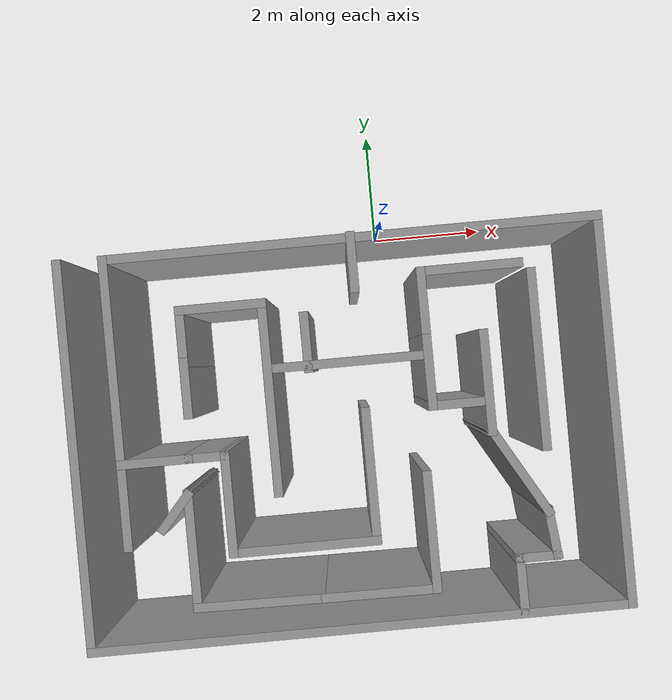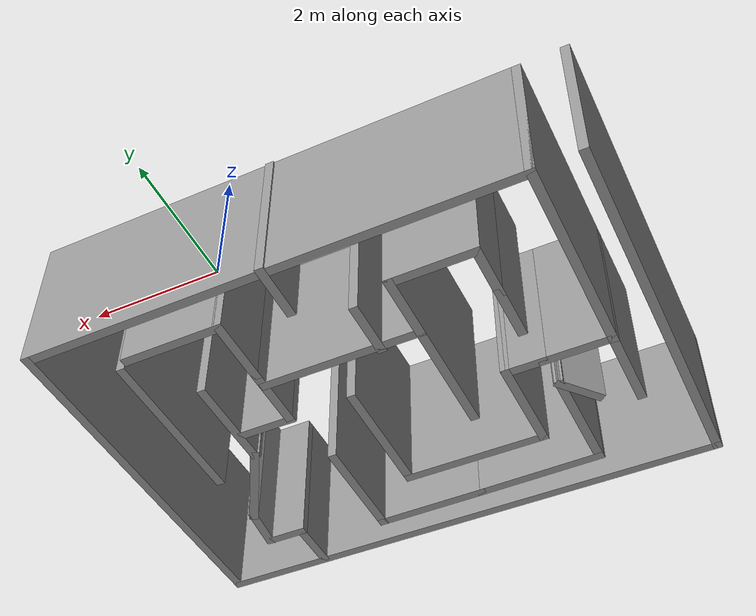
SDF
<?xml version='1.0'?>
<sdf version='1.6'>
  <model name='mymap1'>
    <pose frame=''>-0.925 -3.46046 0 0 -0 0</pose>
    <link name='Wall_0'>
      <collision name='Wall_0_Collision'>
        <geometry>
          <box>
            <size>1 0.15 2.5</size>
          </box>
        </geometry>
        <pose frame=''>0 0 1.25 0 -0 0</pose>
      </collision>
      <visual name='Wall_0_Visual'>
        <pose frame=''>0 0 1.25 0 -0 0</pose>
        <geometry>
          <box>
            <size>1 0.15 2.5</size>
          </box>
        </geometry>
        <material>
          <script>
            <uri>file://media/materials/scripts/gazebo.material</uri>
            <name>Gazebo/Grey</name>
          </script>
          <ambient>1 1 1 1</ambient>
        </material>
      </visual>
      <pose frame=''>-2.505 0.955457 0 0 -0 1.5708</pose>
    </link>
    <link name='Wall_10'>
      <collision name='Wall_10_Collision'>
        <geometry>
          <box>
            <size>1.5 0.15 2.5</size>
          </box>
        </geometry>
        <pose frame=''>0 0 1.25 0 -0 0</pose>
      </collision>
      <visual name='Wall_10_Visual'>
        <pose frame=''>0 0 1.25 0 -0 0</pose>
        <geometry>
          <box>
            <size>1.5 0.15 2.5</size>
          </box>
        </geometry>
        <material>
          <script>
            <uri>file://media/materials/scripts/gazebo.material</uri>
            <name>Gazebo/Grey</name>
          </script>
          <ambient>1 1 1 1</ambient>
        </material>
      </visual>
      <pose frame=''>-1.83 2.23046 0 0 -0 0</pose>
    </link>
    <link name='Wall_11'>
      <collision name='Wall_11_Collision'>
        <geometry>
          <box>
            <size>3.25 0.15 2.5</size>
          </box>
        </geometry>
        <pose frame=''>0 0 1.25 0 -0 0</pose>
      </collision>
      <visual name='Wall_11_Visual'>
        <pose frame=''>0 0 1.25 0 -0 0</pose>
        <geometry>
          <box>
            <size>3.25 0.15 2.5</size>
          </box>
        </geometry>
        <material>
          <script>
            <uri>file://media/materials/scripts/gazebo.material</uri>
            <name>Gazebo/Grey</name>
          </script>
          <ambient>1 1 1 1</ambient>
        </material>
      </visual>
      <pose frame=''>-1.155 0.680457 0 0 0 -1.5708</pose>
    </link>
    <link name='Wall_13'>
      <collision name='Wall_13_Collision'>
        <geometry>
          <box>
            <size>0.75 0.15 2.5</size>
          </box>
        </geometry>
        <pose frame=''>0 0 1.25 0 -0 0</pose>
      </collision>
      <visual name='Wall_13_Visual'>
        <pose frame=''>0 0 1.25 0 -0 0</pose>
        <geometry>
          <box>
            <size>0.75 0.15 2.5</size>
          </box>
        </geometry>
        <material>
          <script>
            <uri>file://media/materials/scripts/gazebo.material</uri>
            <name>Gazebo/Grey</name>
          </script>
          <ambient>1 1 1 1</ambient>
        </material>
      </visual>
      <pose frame=''>-2.275 -0.189543 0 0 -0 0</pose>
    </link>
    <link name='Wall_14'>
      <collision name='Wall_14_Collision'>
        <geometry>
          <box>
            <size>1.75 0.15 2.5</size>
          </box>
        </geometry>
        <pose frame=''>0 0 1.25 0 -0 0</pose>
      </collision>
      <visual name='Wall_14_Visual'>
        <pose frame=''>0 0 1.25 0 -0 0</pose>
        <geometry>
          <box>
            <size>1.75 0.15 2.5</size>
          </box>
        </geometry>
        <material>
          <script>
            <uri>file://media/materials/scripts/gazebo.material</uri>
            <name>Gazebo/Grey</name>
          </script>
          <ambient>1 1 1 1</ambient>
        </material>
      </visual>
      <pose frame=''>-1.975 -0.989543 0 0 0 -1.5708</pose>
    </link>
    <link name='Wall_15'>
      <collision name='Wall_15_Collision'>
        <geometry>
          <box>
            <size>2.5 0.15 2.5</size>
          </box>
        </geometry>
        <pose frame=''>0 0 1.25 0 -0 0</pose>
      </collision>
      <visual name='Wall_15_Visual'>
        <pose frame=''>0 0 1.25 0 -0 0</pose>
        <geometry>
          <box>
            <size>2.5 0.15 2.5</size>
          </box>
        </geometry>
        <material>
          <script>
            <uri>file://media/materials/scripts/gazebo.material</uri>
            <name>Gazebo/Grey</name>
          </script>
          <ambient>1 1 1 1</ambient>
        </material>
      </visual>
      <pose frame=''>-0.8 -1.78954 0 0 -0 0</pose>
    </link>
    <link name='Wall_16'>
      <collision name='Wall_16_Collision'>
        <geometry>
          <box>
            <size>2.25 0.15 2.5</size>
          </box>
        </geometry>
        <pose frame=''>0 0 1.25 0 -0 0</pose>
      </collision>
      <visual name='Wall_16_Visual'>
        <pose frame=''>0 0 1.25 0 -0 0</pose>
        <geometry>
          <box>
            <size>2.25 0.15 2.5</size>
          </box>
        </geometry>
        <material>
          <script>
            <uri>file://media/materials/scripts/gazebo.material</uri>
            <name>Gazebo/Grey</name>
          </script>
          <ambient>1 1 1 1</ambient>
        </material>
      </visual>
      <pose frame=''>0.375 -0.739543 0 0 -0 1.5708</pose>
    </link>
    <link name='Wall_2'>
      <collision name='Wall_2_Collision'>
        <geometry>
          <box>
            <size>1.25 0.15 2.5</size>
          </box>
        </geometry>
        <pose frame=''>0 0 1.25 0 -0 0</pose>
      </collision>
      <visual name='Wall_2_Visual'>
        <pose frame=''>0 0 1.25 0 -0 0</pose>
        <geometry>
          <box>
            <size>1.25 0.15 2.5</size>
          </box>
        </geometry>
        <material>
          <script>
            <uri>file://media/materials/scripts/gazebo.material</uri>
            <name>Gazebo/Grey</name>
          </script>
          <ambient>1 1 1 1</ambient>
        </material>
      </visual>
      <pose frame=''>-3.125 -0.189543 0 0 -0 3.14159</pose>
    </link>
    <link name='Wall_21'>
      <collision name='Wall_21_Collision'>
        <geometry>
          <box>
            <size>1 0.15 2.5</size>
          </box>
        </geometry>
        <pose frame=''>0 0 1.25 0 -0 0</pose>
      </collision>
      <visual name='Wall_21_Visual'>
        <pose frame=''>0 0 1.25 0 -0 0</pose>
        <geometry>
          <box>
            <size>1 0.15 2.5</size>
          </box>
        </geometry>
        <material>
          <script>
            <uri>file://media/materials/scripts/gazebo.material</uri>
            <name>Gazebo/Grey</name>
          </script>
          <ambient>1 1 1 1</ambient>
        </material>
      </visual>
      <pose frame=''>0.381869 2.76454 0 0 0 -1.5708</pose>
    </link>
    <link name='Wall_24'>
      <collision name='Wall_24_Collision'>
        <geometry>
          <box>
            <size>1.25 0.15 2.5</size>
          </box>
        </geometry>
        <pose frame=''>0 0 1.25 0 -0 0</pose>
      </collision>
      <visual name='Wall_24_Visual'>
        <pose frame=''>0 0 1.25 0 -0 0</pose>
        <geometry>
          <box>
            <size>1.25 0.15 2.5</size>
          </box>
        </geometry>
        <material>
          <script>
            <uri>file://media/materials/scripts/gazebo.material</uri>
            <name>Gazebo/Grey</name>
          </script>
          <ambient>1 1 1 1</ambient>
        </material>
      </visual>
      <pose frame=''>1.475 0.860457 0 0 -0 1.5708</pose>
    </link>
    <link name='Wall_27'>
      <collision name='Wall_27_Collision'>
        <geometry>
          <box>
            <size>3 0.15 2.5</size>
          </box>
        </geometry>
        <pose frame=''>0 0 1.25 0 -0 0</pose>
      </collision>
      <visual name='Wall_27_Visual'>
        <pose frame=''>0 0 1.25 0 -0 0</pose>
        <geometry>
          <box>
            <size>3 0.15 2.5</size>
          </box>
        </geometry>
        <material>
          <script>
            <uri>file://media/materials/scripts/gazebo.material</uri>
            <name>Gazebo/Grey</name>
          </script>
          <ambient>1 1 1 1</ambient>
        </material>
      </visual>
      <pose frame=''>3.26606 0.912853 0 0 0 -1.5708</pose>
    </link>
    <link name='Wall_29'>
      <collision name='Wall_29_Collision'>
        <geometry>
          <box>
            <size>1.75 0.15 2.5</size>
          </box>
        </geometry>
        <pose frame=''>0 0 1.25 0 -0 0</pose>
      </collision>
      <visual name='Wall_29_Visual'>
        <pose frame=''>0 0 1.25 0 -0 0</pose>
        <geometry>
          <box>
            <size>1.75 0.15 2.5</size>
          </box>
        </geometry>
        <material>
          <script>
            <uri>file://media/materials/scripts/gazebo.material</uri>
            <name>Gazebo/Grey</name>
          </script>
          <ambient>1 1 1 1</ambient>
        </material>
      </visual>
      <pose frame=''>2.40463 0.61012 0 0 0 -1.5708</pose>
    </link>
    <link name='Wall_3'>
      <collision name='Wall_3_Collision'>
        <geometry>
          <box>
            <size>3.5 0.15 2.5</size>
          </box>
        </geometry>
        <pose frame=''>0 0 1.25 0 -0 0</pose>
      </collision>
      <visual name='Wall_3_Visual'>
        <pose frame=''>0 0 1.25 0 -0 0</pose>
        <geometry>
          <box>
            <size>3.5 0.15 2.5</size>
          </box>
        </geometry>
        <material>
          <script>
            <uri>file://media/materials/scripts/gazebo.material</uri>
            <name>Gazebo/Grey</name>
          </script>
          <ambient>1 1 1 1</ambient>
        </material>
      </visual>
      <pose frame=''>-3.675 1.48546 0 0 -0 1.5708</pose>
    </link>
    <link name='Wall_30'>
      <collision name='Wall_30_Collision'>
        <geometry>
          <box>
            <size>1.75 0.15 2.5</size>
          </box>
        </geometry>
        <pose frame=''>0 0 1.25 0 -0 0</pose>
      </collision>
      <visual name='Wall_30_Visual'>
        <pose frame=''>0 0 1.25 0 -0 0</pose>
        <geometry>
          <box>
            <size>1.75 0.15 2.5</size>
          </box>
        </geometry>
        <material>
          <script>
            <uri>file://media/materials/scripts/gazebo.material</uri>
            <name>Gazebo/Grey</name>
          </script>
          <ambient>1 1 1 1</ambient>
        </material>
      </visual>
      <pose frame=''>2.80463 -0.882701 0 0 0 -1.0472</pose>
    </link>
    <link name='Wall_31'>
      <collision name='Wall_31_Collision'>
        <geometry>
          <box>
            <size>0.868872 0.15 2.5</size>
          </box>
        </geometry>
        <pose frame=''>0 0 1.25 0 -0 0</pose>
      </collision>
      <visual name='Wall_31_Visual'>
        <pose frame=''>0 0 1.25 0 -0 0</pose>
        <geometry>
          <box>
            <size>0.868872 0.15 2.5</size>
          </box>
        </geometry>
        <material>
          <script>
            <uri>file://media/materials/scripts/gazebo.material</uri>
            <name>Gazebo/Grey</name>
          </script>
          <ambient>1 1 1 1</ambient>
        </material>
      </visual>
      <pose frame=''>3.24484 -1.9327 0 0 0 -1.4587</pose>
    </link>
    <link name='Wall_32'>
      <collision name='Wall_32_Collision'>
        <geometry>
          <box>
            <size>0.75 0.15 2.5</size>
          </box>
        </geometry>
        <pose frame=''>0 0 1.25 0 -0 0</pose>
      </collision>
      <visual name='Wall_32_Visual'>
        <pose frame=''>0 0 1.25 0 -0 0</pose>
        <geometry>
          <box>
            <size>0.75 0.15 2.5</size>
          </box>
        </geometry>
        <material>
          <script>
            <uri>file://media/materials/scripts/gazebo.material</uri>
            <name>Gazebo/Grey</name>
          </script>
          <ambient>1 1 1 1</ambient>
        </material>
      </visual>
      <pose frame=''>2.96984 -2.28988 0 0 -0 3.14159</pose>
    </link>
    <link name='Wall_34'>
      <collision name='Wall_34_Collision'>
        <geometry>
          <box>
            <size>2 0.15 2.5</size>
          </box>
        </geometry>
        <pose frame=''>0 0 1.25 0 -0 0</pose>
      </collision>
      <visual name='Wall_34_Visual'>
        <pose frame=''>0 0 1.25 0 -0 0</pose>
        <geometry>
          <box>
            <size>2 0.15 2.5</size>
          </box>
        </geometry>
        <material>
          <script>
            <uri>file://media/materials/scripts/gazebo.material</uri>
            <name>Gazebo/Grey</name>
          </script>
          <ambient>1 1 1 1</ambient>
        </material>
      </visual>
      <pose frame=''>1.27919 -1.73536 0 0 0 -1.5708</pose>
    </link>
    <link name='Wall_4'>
      <collision name='Wall_4_Collision'>
        <geometry>
          <box>
            <size>8.25 0.15 2.5</size>
          </box>
        </geometry>
        <pose frame=''>0 0 1.25 0 -0 0</pose>
      </collision>
      <visual name='Wall_4_Visual'>
        <pose frame=''>0 0 1.25 0 -0 0</pose>
        <geometry>
          <box>
            <size>8.25 0.15 2.5</size>
          </box>
        </geometry>
        <material>
          <script>
            <uri>file://media/materials/scripts/gazebo.material</uri>
            <name>Gazebo/Grey</name>
          </script>
          <ambient>1 1 1 1</ambient>
        </material>
      </visual>
      <pose frame=''>0.375 3.16046 0 0 -0 0</pose>
    </link>
    <link name='Wall_42'>
      <collision name='Wall_42_Collision'>
        <geometry>
          <box>
            <size>1.25 0.15 2.5</size>
          </box>
        </geometry>
        <pose frame=''>0 0 1.25 0 -0 0</pose>
      </collision>
      <visual name='Wall_42_Visual'>
        <pose frame=''>0 0 1.25 0 -0 0</pose>
        <geometry>
          <box>
            <size>1.25 0.15 2.5</size>
          </box>
        </geometry>
        <material>
          <script>
            <uri>file://media/materials/scripts/gazebo.material</uri>
            <name>Gazebo/Grey</name>
          </script>
          <ambient>1 1 1 1</ambient>
        </material>
      </visual>
      <pose frame=''>1.475 1.96046 0 0 -0 1.5708</pose>
    </link>
    <link name='Wall_43'>
      <collision name='Wall_43_Collision'>
        <geometry>
          <box>
            <size>1.75 0.15 2.5</size>
          </box>
        </geometry>
        <pose frame=''>0 0 1.25 0 -0 0</pose>
      </collision>
      <visual name='Wall_43_Visual'>
        <pose frame=''>0 0 1.25 0 -0 0</pose>
        <geometry>
          <box>
            <size>1.75 0.15 2.5</size>
          </box>
        </geometry>
        <material>
          <script>
            <uri>file://media/materials/scripts/gazebo.material</uri>
            <name>Gazebo/Grey</name>
          </script>
          <ambient>1 1 1 1</ambient>
        </material>
      </visual>
      <pose frame=''>2.275 2.51046 0 0 -0 0</pose>
    </link>
    <link name='Wall_45'>
      <collision name='Wall_45_Collision'>
        <geometry>
          <box>
            <size>2.75 0.15 2.5</size>
          </box>
        </geometry>
        <pose frame=''>0 0 1.25 0 -0 0</pose>
      </collision>
      <visual name='Wall_45_Visual'>
        <pose frame=''>0 0 1.25 0 -0 0</pose>
        <geometry>
          <box>
            <size>2.75 0.15 2.5</size>
          </box>
        </geometry>
        <material>
          <script>
            <uri>file://media/materials/scripts/gazebo.material</uri>
            <name>Gazebo/Grey</name>
          </script>
          <ambient>1 1 1 1</ambient>
        </material>
      </visual>
      <pose frame=''>0.160994 1.15157 0 0 -0 0</pose>
    </link>
    <link name='Wall_47'>
      <collision name='Wall_47_Collision'>
        <geometry>
          <box>
            <size>1 0.15 2.5</size>
          </box>
        </geometry>
        <pose frame=''>0 0 1.25 0 -0 0</pose>
      </collision>
      <visual name='Wall_47_Visual'>
        <pose frame=''>0 0 1.25 0 -0 0</pose>
        <geometry>
          <box>
            <size>1 0.15 2.5</size>
          </box>
        </geometry>
        <material>
          <script>
            <uri>file://media/materials/scripts/gazebo.material</uri>
            <name>Gazebo/Grey</name>
          </script>
          <ambient>1 1 1 1</ambient>
        </material>
      </visual>
      <pose frame=''>-0.48503 1.53095 0 0 -0 1.5708</pose>
    </link>
    <link name='Wall_5'>
      <collision name='Wall_5_Collision'>
        <geometry>
          <box>
            <size>6.5 0.15 2.5</size>
          </box>
        </geometry>
        <pose frame=''>0 0 1.25 0 -0 0</pose>
      </collision>
      <visual name='Wall_5_Visual'>
        <pose frame=''>0 0 1.25 0 -0 0</pose>
        <geometry>
          <box>
            <size>6.5 0.15 2.5</size>
          </box>
        </geometry>
        <material>
          <script>
            <uri>file://media/materials/scripts/gazebo.material</uri>
            <name>Gazebo/Grey</name>
          </script>
          <ambient>1 1 1 1</ambient>
        </material>
      </visual>
      <pose frame=''>4.425 -0.014543 0 0 0 -1.5708</pose>
    </link>
    <link name='Wall_50'>
      <collision name='Wall_50_Collision'>
        <geometry>
          <box>
            <size>1.97509 0.15 2.5</size>
          </box>
        </geometry>
        <pose frame=''>0 0 1.25 0 -0 0</pose>
      </collision>
      <visual name='Wall_50_Visual'>
        <pose frame=''>0 0 1.25 0 -0 0</pose>
        <geometry>
          <box>
            <size>1.97509 0.15 2.5</size>
          </box>
        </geometry>
        <material>
          <script>
            <uri>file://media/materials/scripts/gazebo.material</uri>
            <name>Gazebo/Grey</name>
          </script>
          <ambient>1 1 1 1</ambient>
        </material>
      </visual>
      <pose frame=''>0.36666 -2.65464 0 0 0 -0.006263</pose>
    </link>
    <link name='Wall_52'>
      <collision name='Wall_52_Collision'>
        <geometry>
          <box>
            <size>2.23501 0.15 2.5</size>
          </box>
        </geometry>
        <pose frame=''>0 0 1.25 0 -0 0</pose>
      </collision>
      <visual name='Wall_52_Visual'>
        <pose frame=''>0 0 1.25 0 -0 0</pose>
        <geometry>
          <box>
            <size>2.23501 0.15 2.5</size>
          </box>
        </geometry>
        <material>
          <script>
            <uri>file://media/materials/scripts/gazebo.material</uri>
            <name>Gazebo/Grey</name>
          </script>
          <ambient>1 1 1 1</ambient>
        </material>
      </visual>
      <pose frame=''>-1.58826 -2.63372 0 0 -0 3.127</pose>
    </link>
    <link name='Wall_54'>
      <collision name='Wall_54_Collision'>
        <geometry>
          <box>
            <size>0.843334 0.15 2.5</size>
          </box>
        </geometry>
        <pose frame=''>0 0 1.25 0 -0 0</pose>
      </collision>
      <visual name='Wall_54_Visual'>
        <pose frame=''>0 0 1.25 0 -0 0</pose>
        <geometry>
          <box>
            <size>0.843334 0.15 2.5</size>
          </box>
        </geometry>
        <material>
          <script>
            <uri>file://media/materials/scripts/gazebo.material</uri>
            <name>Gazebo/Grey</name>
          </script>
          <ambient>0 0 0 0</ambient>
        </material>
      </visual>
      <pose frame=''>-2.85627 -1.03172 0 0 0 -2.27942</pose>
    </link>
    <link name='Wall_56'>
      <collision name='Wall_56_Collision'>
        <geometry>
          <box>
            <size>1.5 0.15 2.5</size>
          </box>
        </geometry>
        <pose frame=''>0 0 1.25 0 -0 0</pose>
      </collision>
      <visual name='Wall_56_Visual'>
        <pose frame=''>0 0 1.25 0 -0 0</pose>
        <geometry>
          <box>
            <size>1.5 0.15 2.5</size>
          </box>
        </geometry>
        <material>
          <script>
            <uri>file://media/materials/scripts/gazebo.material</uri>
            <name>Gazebo/Grey</name>
          </script>
          <ambient>1 1 1 1</ambient>
        </material>
      </visual>
      <pose frame=''>-3.675 -0.864543 0 0 0 -1.5708</pose>
    </link>
    <link name='Wall_59'>
      <collision name='Wall_59_Collision'>
        <geometry>
          <box>
            <size>2 0.15 2.5</size>
          </box>
        </geometry>
        <pose frame=''>0 0 1.25 0 -0 0</pose>
      </collision>
      <visual name='Wall_59_Visual'>
        <pose frame=''>0 0 1.25 0 -0 0</pose>
        <geometry>
          <box>
            <size>2 0.15 2.5</size>
          </box>
        </geometry>
        <material>
          <script>
            <uri>file://media/materials/scripts/gazebo.material</uri>
            <name>Gazebo/Grey</name>
          </script>
          <ambient>1 1 1 1</ambient>
        </material>
      </visual>
      <pose frame=''>-2.63066 -1.69351 0 0 0 -1.5708</pose>
    </link>
    <link name='Wall_6'>
      <collision name='Wall_6_Collision'>
        <geometry>
          <box>
            <size>9 0.15 2.5</size>
          </box>
        </geometry>
        <pose frame=''>0 0 1.25 0 -0 0</pose>
      </collision>
      <visual name='Wall_6_Visual'>
        <pose frame=''>0 0 1.25 0 -0 0</pose>
        <geometry>
          <box>
            <size>9 0.15 2.5</size>
          </box>
        </geometry>
        <material>
          <script>
            <uri>file://media/materials/scripts/gazebo.material</uri>
            <name>Gazebo/Grey</name>
          </script>
          <ambient>1 1 1 1</ambient>
        </material>
      </visual>
      <pose frame=''>0 -3.18954 0 0 -0 3.14159</pose>
    </link>
    <link name='Wall_61'>
      <collision name='Wall_61_Collision'>
        <geometry>
          <box>
            <size>1 0.15 2.5</size>
          </box>
        </geometry>
        <pose frame=''>0 0 1.25 0 -0 0</pose>
      </collision>
      <visual name='Wall_61_Visual'>
        <pose frame=''>0 0 1.25 0 -0 0</pose>
        <geometry>
          <box>
            <size>1 0.15 2.5</size>
          </box>
        </geometry>
        <material>
          <script>
            <uri>file://media/materials/scripts/gazebo.material</uri>
            <name>Gazebo/Grey</name>
          </script>
          <ambient>1 1 1 1</ambient>
        </material>
      </visual>
      <pose frame=''>1.9 0.310457 0 0 -0 0</pose>
    </link>
    <link name='Wall_63'>
      <collision name='Wall_63_Collision'>
        <geometry>
          <box>
            <size>1 0.15 2.5</size>
          </box>
        </geometry>
        <pose frame=''>0 0 1.25 0 -0 0</pose>
      </collision>
      <visual name='Wall_63_Visual'>
        <pose frame=''>0 0 1.25 0 -0 0</pose>
        <geometry>
          <box>
            <size>1 0.15 2.5</size>
          </box>
        </geometry>
        <material>
          <script>
            <uri>file://media/materials/scripts/gazebo.material</uri>
            <name>Gazebo/Grey</name>
          </script>
          <ambient>1 1 1 1</ambient>
        </material>
      </visual>
      <pose frame=''>2.66984 -2.71488 0 0 0 -1.5708</pose>
    </link>
    <link name='Wall_7'>
      <collision name='Wall_7_Collision'>
        <geometry>
          <box>
            <size>6.5 0.15 2.5</size>
          </box>
        </geometry>
        <pose frame=''>0 0 1.25 0 -0 0</pose>
      </collision>
      <visual name='Wall_7_Visual'>
        <pose frame=''>0 0 1.25 0 -0 0</pose>
        <geometry>
          <box>
            <size>6.5 0.15 2.5</size>
          </box>
        </geometry>
        <material>
          <script>
            <uri>file://media/materials/scripts/gazebo.material</uri>
            <name>Gazebo/Grey</name>
          </script>
          <ambient>1 1 1 1</ambient>
        </material>
      </visual>
      <pose frame=''>-4.425 -0.014543 0 0 -0 1.5708</pose>
    </link>
    <link name='Wall_9'>
      <collision name='Wall_9_Collision'>
        <geometry>
          <box>
            <size>1 0.15 2.5</size>
          </box>
        </geometry>
        <pose frame=''>0 0 1.25 0 -0 0</pose>
      </collision>
      <visual name='Wall_9_Visual'>
        <pose frame=''>0 0 1.25 0 -0 0</pose>
        <geometry>
          <box>
            <size>1 0.15 2.5</size>
          </box>
        </geometry>
        <material>
          <script>
            <uri>file://media/materials/scripts/gazebo.material</uri>
            <name>Gazebo/Grey</name>
          </script>
          <ambient>1 1 1 1</ambient>
        </material>
      </visual>
      <pose frame=''>-2.505 1.80546 0 0 -0 1.5708</pose>
    </link>
    <static>1</static>
  </model>
</sdf>
